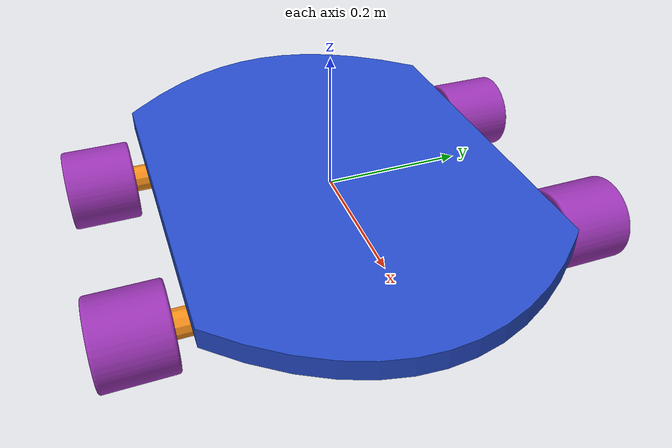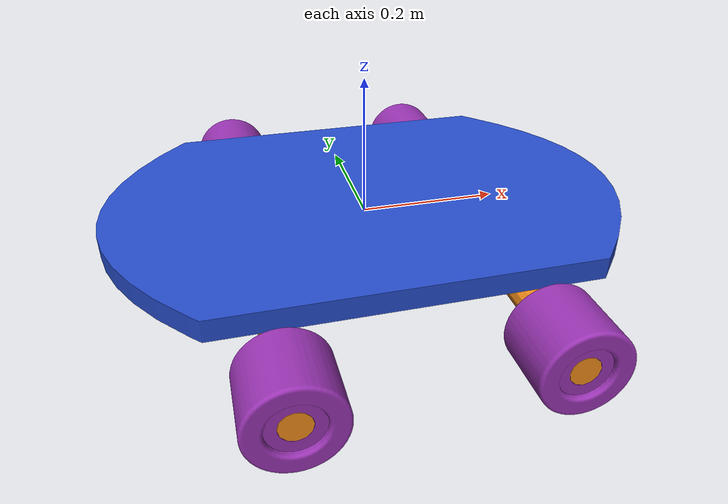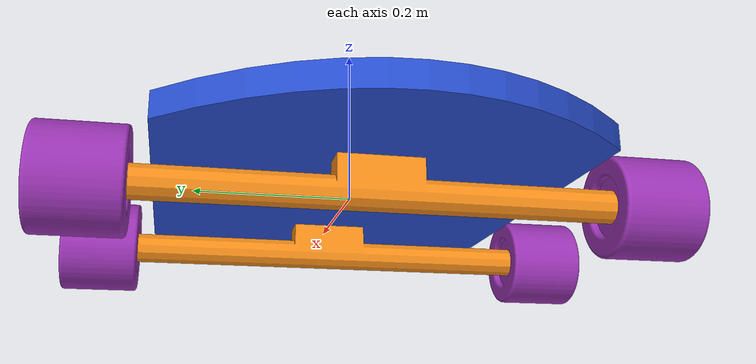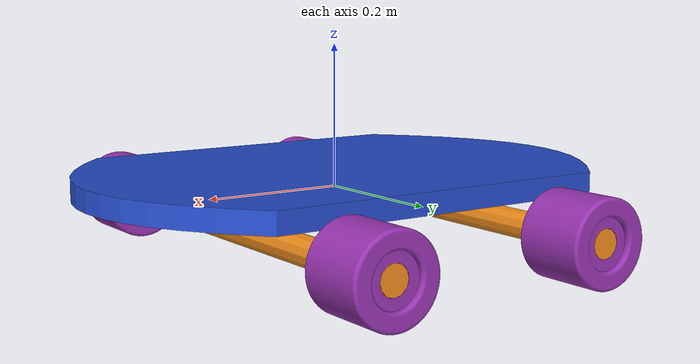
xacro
<?xml version="1.0"?>
<robot name="bot" xmlns:xacro="https://www.ros.org/wiki/xacro">

  <xacro:macro name="visual_and_collision_origin">
    <origin xyz="0 0 0" rpy="0 0 0"/>
  </xacro:macro>

  <xacro:macro name="visual_and_collision_geometry" params="link_name">
    <geometry>
      <mesh filename="package://flip1_description/meshes/${link_name}.STL"/>
    </geometry>
  </xacro:macro>

  <xacro:macro name="visual_and_collision_for_link" params="material_name  gen_link_name">
    <visual>
      <xacro:visual_and_collision_origin/>
      <xacro:visual_and_collision_geometry link_name="${gen_link_name}"/>
      <material name="${material_name}"/>
    </visual>
    <collision>
      <xacro:visual_and_collision_origin/>
      <xacro:visual_and_collision_geometry link_name="${gen_link_name}"/>
    </collision>
  </xacro:macro>

  <xacro:macro name="link_tag" params="link material mass *inertial_origin **interia_matrix">
    <link name="${link}">
      <xacro:visual_and_collision_for_link material_name="${material}" gen_link_name="${link}"/>
      <inertial>
        <mass value="${mass}"/>
        <xacro:insert_block name="inertial_origin"/>
        <xacro:insert_block name="interia_matrix"/>
      </inertial>
    </link>
  </xacro:macro>

  <xacro:link_tag link="base_link_bot" material="blue" mass="9.976679411">
    <origin xyz="-1.84685805937335E-06 0 0.015" rpy="0 0 0" />
    <inertial_matrix>
      <inertia
        ixx="0.187958008238022" ixy="3.08331692261721E-07" ixz="3.17637355220364E-19"
        iyy="0.381816176166743" iyz="1.41513138596527E-18" izz="0.568277677102426" />
    </inertial_matrix>
  </xacro:link_tag>

  <xacro:link_tag link="link1" material="orange" mass="1.0019">
    <origin xyz="-1.1102E-16 -0.36 0.0026615" rpy="0 0 0"/>
    <inertial_matrix>
      <inertia
        ixx="0.03933" ixy="5.6898E-21" ixz="8.3057E-21"
        iyy="0.00026796" iyz="-2.4157E-19" izz="0.039273" />
   </inertial_matrix>
  </xacro:link_tag>

  <xacro:link_tag link="link2" material="orange" mass="1.0019">
    <origin xyz="-1.11022302462516E-16 -0.36 0.00266148520433351" rpy="0 0 0"/>
    <inertial_matrix>
      <inertia
        ixx="0.0393298433372476" ixy="1.31346575687572E-21" ixz="8.30571622249648E-21"
        iyy="0.000267958739020857" iyz="-9.65217337723654E-20" izz="0.0392729406311258" />
    </inertial_matrix>
  </xacro:link_tag>

  <xacro:link_tag link="link3" material="purple" mass="0.95841">
    <origin xyz="0 -2.7756E-17 0" rpy="0 0 0"/>
    <inertial_matrix>
      <inertia
        ixx="0.00172" ixy="6.5405E-20" ixz="7.1492E-20"
        iyy="0.0019649" iyz="-1.0822E-19" izz="0.00172" />
    </inertial_matrix>
  </xacro:link_tag>

  <xacro:link_tag link="link4" material="purple" mass="0.95841">
    <origin xyz="0 -1.1102E-16 0" rpy="0 0 0"/>
    <inertial_matrix>
      <inertia
        ixx="0.00172" ixy="3.8103E-20" ixz="7.1492E-20"
        iyy="0.0019649" iyz="-8.0921E-20" izz="0.00172"/>
    </inertial_matrix>
  </xacro:link_tag>

  <xacro:link_tag link="link5" material="purple" mass="0.95841">
    <origin xyz="1.11022302462516E-16 -2.77555756156289E-17 0" rpy="0 0 0"/>
    <inertial_matrix>
      <inertia
        ixx="0.00172004064353737" ixy="9.19911852675595E-22" ixz="5.42101086242752E-20"
        iyy="0.00196493476186237" iyz="-9.05839369835372E-20" izz="0.00172004064353737"/>
    </inertial_matrix>
  </xacro:link_tag>

  <xacro:link_tag link="link6" material="purple" mass="0.95841">
    <origin xyz="1.1102E-16 -1.1102E-16 0" rpy="0 0 0"/>
    <inertial_matrix>
      <inertia
        ixx="0.00172" ixy="-1.7049E-20" ixz="2.1684E-19"
        iyy="0.0019649" iyz="-9.2729E-20" izz="0.00172"/>
    </inertial_matrix>
  </xacro:link_tag>

 <joint name="joint1" type="fixed">
   <origin xyz="0.16597 0.36 -0.04" rpy="0 0 0" />
   <parent link="base_link_bot" />
   <child link="link1" />
 </joint>

 <joint name="joint2" type="fixed">
   <origin xyz="-0.16597 0.36 -0.04" rpy="0 0 0" />
   <parent link="base_link_bot" />
   <child link="link2" />
 </joint>

 <joint name="joint3" type="continuous">
   <origin xyz="0 -0.041744 0" rpy="0 0 0" />
   <parent link="link1" />
   <child link="link3" />
   <axis xyz="0 1 0" />
 </joint>

 <joint name="joint4" type="continuous">
   <origin xyz="0 -0.67826 0" rpy="0 0 0" />
   <parent link="link1" />
   <child link="link4" />
   <axis xyz="0 1 0" />
 </joint>

 <joint name="joint5" type="continuous">
   <origin xyz="0 -0.041744 0" rpy="0 0.082724 0" />
   <parent link="link2" />
   <child link="link5" />
   <axis xyz="0 1 0" />
 </joint>

 <joint name="joint6" type="continuous">
   <origin xyz="0 -0.67826 0" rpy="0 -0.55404 0" />
   <parent link="link2" />
   <child link="link6" />
   <axis xyz="0 1 0" />
 </joint>
</robot>
